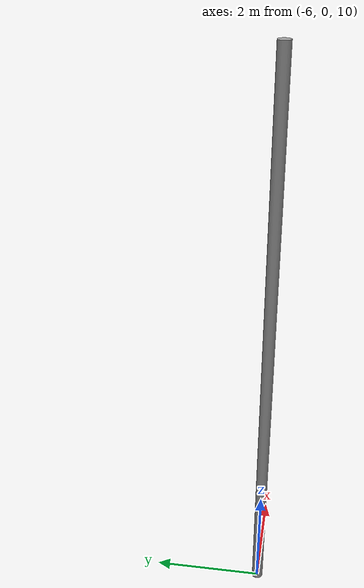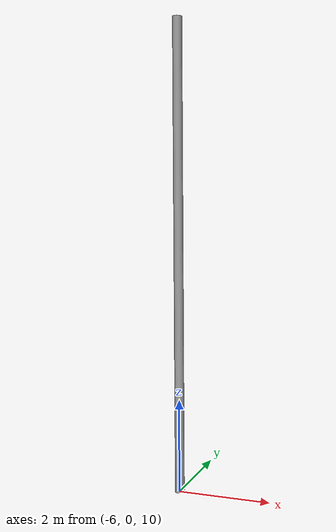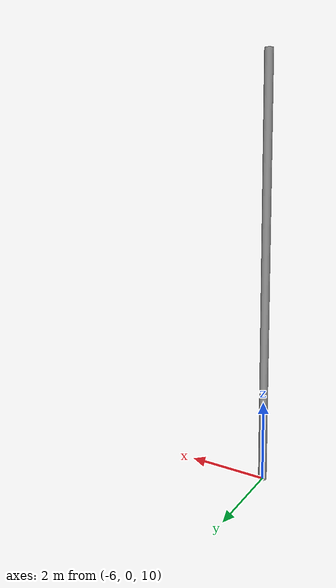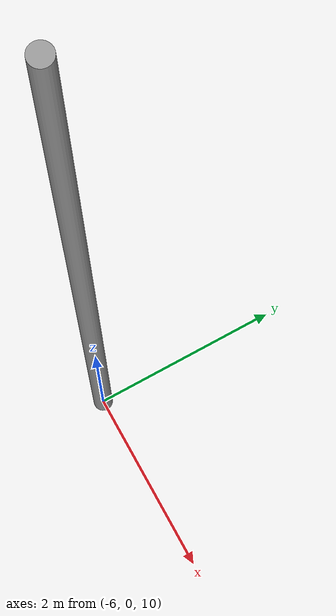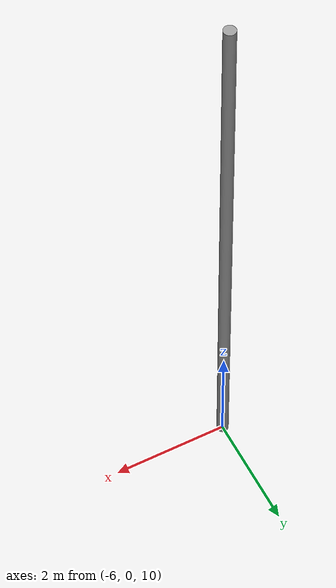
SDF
<?xml version='1.0'?>
<sdf version='1.7'><model name='stick_neg'>
  <pose>-6 0 15 0 0 0</pose>
  <link name='link_1'>
    <turnGravityOff>1</turnGravityOff>
    <gravity>0</gravity>
    <visual name='visual'>
      <geometry>
        <cylinder><radius>0.1</radius><length>10</length></cylinder>
      </geometry>
      <material>
        <script>
          <name>Gazebo/Grey</name>
          <uri>file://media/materials/scripts/gazebo.material</uri>
        </script>
      </material>
    </visual>
  </link>
  <plugin name="model_push" filename="libmodel_revolve_y.so"/>
</model>
</sdf>
